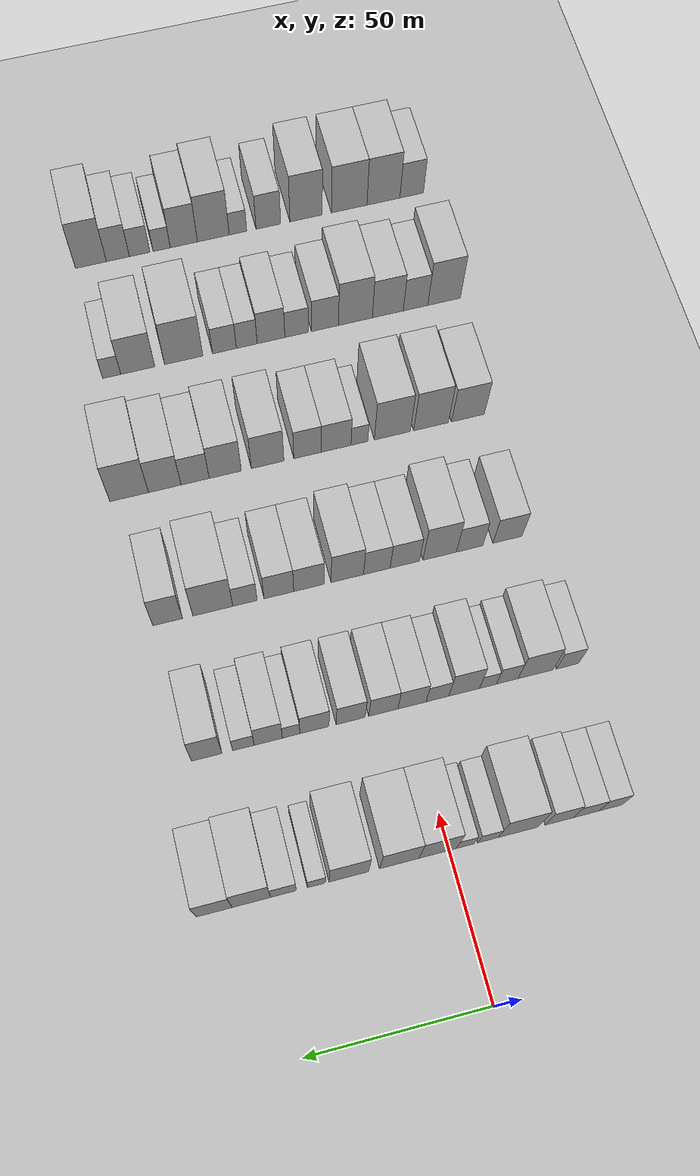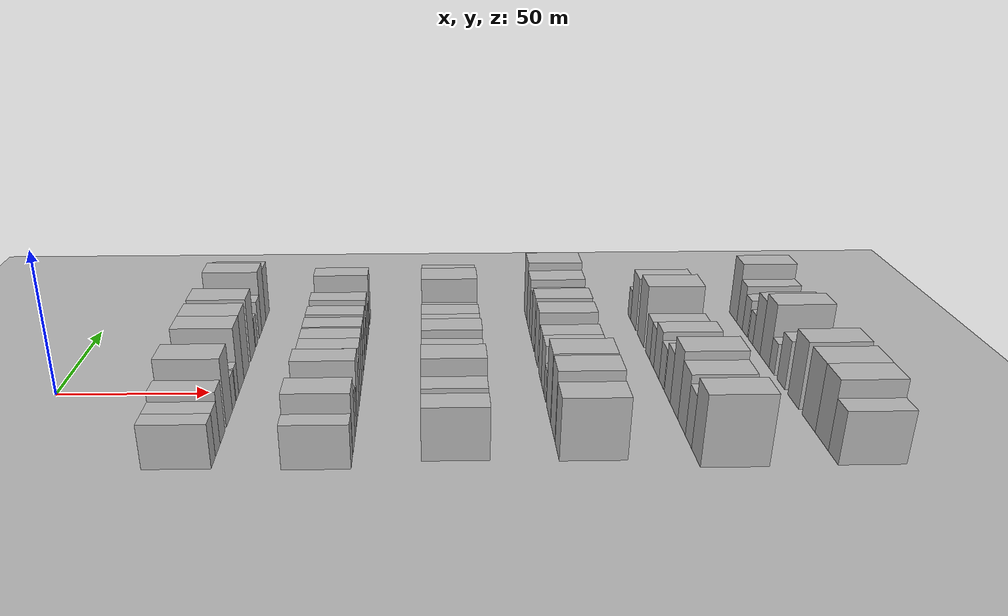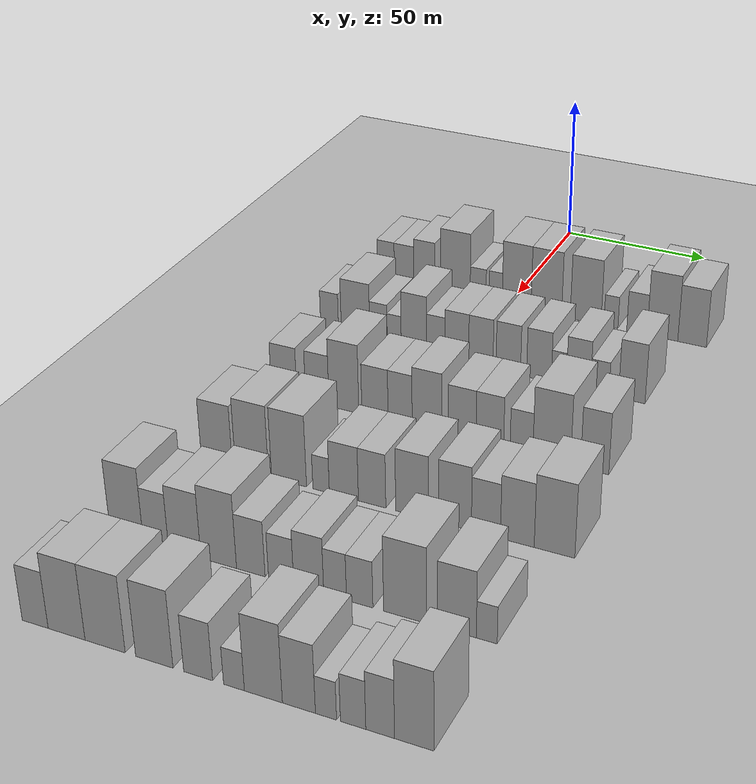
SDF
<sdf version="1.6">
 <world name="default">
  <include><name>ground_plane_1</name><uri>model://HANNAS_ground_plane</uri></include>
  <include>
   <name>ground_plane_2</name>
   <uri>model://HANNAS_ground_plane</uri>
   <pose>100 0 0  0 0 0</pose>
  </include>
  <model name="building_63">
   <static>1</static>
   <pose>50.0000 -44.7926 0 0.000000 0.000000 0.000000</pose>
   <link name="link">
    <pose>0 0 7.50 0 0 0</pose>
    <collision name="collision"><geometry><box><size>20.0000 6.4027 15.0000</size></box></geometry></collision>
    <visual name="visual">
     <cast_shadows>0</cast_shadows>
     <geometry><box><size>20.0000 6.4027 15.0000</size></box></geometry>
     <material>
      <script>
       <uri>model://HANNAS_wall/materials/scripts</uri>
       <uri>model://HANNAS_wall/materials/textures</uri>
       <name>vrc/HANNAS_wall</name>
      </script>
     </material>
    </visual>
   </link>
  </model>
  <model name="building_64">
   <static>1</static>
   <pose>50.0000 -37.9547 0 0.000000 0.000000 0.000000</pose>
   <link name="link">
    <pose>0 0 7.50 0 0 0</pose>
    <collision name="collision"><geometry><box><size>20.0000 7.2730 15.0000</size></box></geometry></collision>
    <visual name="visual">
     <cast_shadows>0</cast_shadows>
     <geometry><box><size>20.0000 7.2730 15.0000</size></box></geometry>
     <material>
      <script>
       <uri>model://HANNAS_wall/materials/scripts</uri>
       <uri>model://HANNAS_wall/materials/textures</uri>
       <name>vrc/HANNAS_wall</name>
      </script>
     </material>
    </visual>
   </link>
  </model>
  <model name="building_65">
   <static>1</static>
   <pose>50.0000 -30.3845 0 0.000000 0.000000 0.000000</pose>
   <link name="link">
    <pose>0 0 9.00 0 0 0</pose>
    <collision name="collision"><geometry><box><size>20.0000 7.8674 18.0000</size></box></geometry></collision>
    <visual name="visual">
     <cast_shadows>0</cast_shadows>
     <geometry><box><size>20.0000 7.8674 18.0000</size></box></geometry>
     <material>
      <script>
       <uri>model://HANNAS_wall/materials/scripts</uri>
       <uri>model://HANNAS_wall/materials/textures</uri>
       <name>vrc/HANNAS_wall</name>
      </script>
     </material>
    </visual>
   </link>
  </model>
  <model name="building_66">
   <static>1</static>
   <pose>50.0000 -18.9891 0 0.000000 0.000000 0.000000</pose>
   <link name="link">
    <pose>0 0 12.00 0 0 0</pose>
    <collision name="collision"><geometry><box><size>20.0000 10.9234 24.0000</size></box></geometry></collision>
    <visual name="visual">
     <cast_shadows>0</cast_shadows>
     <geometry><box><size>20.0000 10.9234 24.0000</size></box></geometry>
     <material>
      <script>
       <uri>model://HANNAS_wall/materials/scripts</uri>
       <uri>model://HANNAS_wall/materials/textures</uri>
       <name>vrc/HANNAS_wall</name>
      </script>
     </material>
    </visual>
   </link>
  </model>
  <model name="building_67">
   <static>1</static>
   <pose>50.0000 -10.6484 0 0.000000 0.000000 0.000000</pose>
   <link name="link">
    <pose>0 0 6.00 0 0 0</pose>
    <collision name="collision"><geometry><box><size>20.0000 5.7579 12.0000</size></box></geometry></collision>
    <visual name="visual">
     <cast_shadows>0</cast_shadows>
     <geometry><box><size>20.0000 5.7579 12.0000</size></box></geometry>
     <material>
      <script>
       <uri>model://HANNAS_wall/materials/scripts</uri>
       <uri>model://HANNAS_wall/materials/textures</uri>
       <name>vrc/HANNAS_wall</name>
      </script>
     </material>
    </visual>
   </link>
  </model>
  <model name="building_68">
   <static>1</static>
   <pose>50.0000 -4.3499 0 0.000000 0.000000 0.000000</pose>
   <link name="link">
    <pose>0 0 6.00 0 0 0</pose>
    <collision name="collision"><geometry><box><size>20.0000 4.8391 12.0000</size></box></geometry></collision>
    <visual name="visual">
     <cast_shadows>0</cast_shadows>
     <geometry><box><size>20.0000 4.8391 12.0000</size></box></geometry>
     <material>
      <script>
       <uri>model://HANNAS_wall/materials/scripts</uri>
       <uri>model://HANNAS_wall/materials/textures</uri>
       <name>vrc/HANNAS_wall</name>
      </script>
     </material>
    </visual>
   </link>
  </model>
  <model name="building_69">
   <static>1</static>
   <pose>50.0000 3.2080 0 0.000000 0.000000 0.000000</pose>
   <link name="link">
    <pose>0 0 12.00 0 0 0</pose>
    <collision name="collision"><geometry><box><size>20.0000 10.2767 24.0000</size></box></geometry></collision>
    <visual name="visual">
     <cast_shadows>0</cast_shadows>
     <geometry><box><size>20.0000 10.2767 24.0000</size></box></geometry>
     <material>
      <script>
       <uri>model://HANNAS_wall/materials/scripts</uri>
       <uri>model://HANNAS_wall/materials/textures</uri>
       <name>vrc/HANNAS_wall</name>
      </script>
     </material>
    </visual>
   </link>
  </model>
  <model name="building_70">
   <static>1</static>
   <pose>50.0000 13.7249 0 0.000000 0.000000 0.000000</pose>
   <link name="link">
    <pose>0 0 12.00 0 0 0</pose>
    <collision name="collision"><geometry><box><size>20.0000 10.7570 24.0000</size></box></geometry></collision>
    <visual name="visual">
     <cast_shadows>0</cast_shadows>
     <geometry><box><size>20.0000 10.7570 24.0000</size></box></geometry>
     <material>
      <script>
       <uri>model://HANNAS_wall/materials/scripts</uri>
       <uri>model://HANNAS_wall/materials/textures</uri>
       <name>vrc/HANNAS_wall</name>
      </script>
     </material>
    </visual>
   </link>
  </model>
  <model name="building_71">
   <static>1</static>
   <pose>50.0000 27.4315 0 0.000000 0.000000 0.000000</pose>
   <link name="link">
    <pose>0 0 12.00 0 0 0</pose>
    <collision name="collision"><geometry><box><size>20.0000 10.6563 24.0000</size></box></geometry></collision>
    <visual name="visual">
     <cast_shadows>0</cast_shadows>
     <geometry><box><size>20.0000 10.6563 24.0000</size></box></geometry>
     <material>
      <script>
       <uri>model://HANNAS_wall/materials/scripts</uri>
       <uri>model://HANNAS_wall/materials/textures</uri>
       <name>vrc/HANNAS_wall</name>
      </script>
     </material>
    </visual>
   </link>
  </model>
  <model name="building_72">
   <static>1</static>
   <pose>50.0000 36.1661 0 0.000000 0.000000 0.000000</pose>
   <link name="link">
    <pose>0 0 6.00 0 0 0</pose>
    <collision name="collision"><geometry><box><size>20.0000 4.8128 12.0000</size></box></geometry></collision>
    <visual name="visual">
     <cast_shadows>0</cast_shadows>
     <geometry><box><size>20.0000 4.8128 12.0000</size></box></geometry>
     <material>
      <script>
       <uri>model://HANNAS_wall/materials/scripts</uri>
       <uri>model://HANNAS_wall/materials/textures</uri>
       <name>vrc/HANNAS_wall</name>
      </script>
     </material>
    </visual>
   </link>
  </model>
  <model name="building_73">
   <static>1</static>
   <pose>50.0000 45.0174 0 0.000000 0.000000 0.000000</pose>
   <link name="link">
    <pose>0 0 7.50 0 0 0</pose>
    <collision name="collision"><geometry><box><size>20.0000 6.8899 15.0000</size></box></geometry></collision>
    <visual name="visual">
     <cast_shadows>0</cast_shadows>
     <geometry><box><size>20.0000 6.8899 15.0000</size></box></geometry>
     <material>
      <script>
       <uri>model://HANNAS_wall/materials/scripts</uri>
       <uri>model://HANNAS_wall/materials/textures</uri>
       <name>vrc/HANNAS_wall</name>
      </script>
     </material>
    </visual>
   </link>
  </model>
  <model name="building_74">
   <static>1</static>
   <pose>50.0000 53.5892 0 0.000000 0.000000 0.000000</pose>
   <link name="link">
    <pose>0 0 12.00 0 0 0</pose>
    <collision name="collision"><geometry><box><size>20.0000 10.2537 24.0000</size></box></geometry></collision>
    <visual name="visual">
     <cast_shadows>0</cast_shadows>
     <geometry><box><size>20.0000 10.2537 24.0000</size></box></geometry>
     <material>
      <script>
       <uri>model://HANNAS_wall/materials/scripts</uri>
       <uri>model://HANNAS_wall/materials/textures</uri>
       <name>vrc/HANNAS_wall</name>
      </script>
     </material>
    </visual>
   </link>
  </model>
  <model name="building_75">
   <static>1</static>
   <pose>50.0000 63.4584 0 0.000000 0.000000 0.000000</pose>
   <link name="link">
    <pose>0 0 10.50 0 0 0</pose>
    <collision name="collision"><geometry><box><size>20.0000 9.4847 21.0000</size></box></geometry></collision>
    <visual name="visual">
     <cast_shadows>0</cast_shadows>
     <geometry><box><size>20.0000 9.4847 21.0000</size></box></geometry>
     <material>
      <script>
       <uri>model://HANNAS_wall/materials/scripts</uri>
       <uri>model://HANNAS_wall/materials/textures</uri>
       <name>vrc/HANNAS_wall</name>
      </script>
     </material>
    </visual>
   </link>
  </model>
  <model name="building_201">
   <static>1</static>
   <pose>90.0000 -45.8634 0 0.000000 0.000000 0.000000</pose>
   <link name="link">
    <pose>0 0 7.50 0 0 0</pose>
    <collision name="collision"><geometry><box><size>20.0000 6.4778 15.0000</size></box></geometry></collision>
    <visual name="visual">
     <cast_shadows>0</cast_shadows>
     <geometry><box><size>20.0000 6.4778 15.0000</size></box></geometry>
     <material>
      <script>
       <uri>model://HANNAS_wall/materials/scripts</uri>
       <uri>model://HANNAS_wall/materials/textures</uri>
       <name>vrc/HANNAS_wall</name>
      </script>
     </material>
    </visual>
   </link>
  </model>
  <model name="building_202">
   <static>1</static>
   <pose>90.0000 -36.5340 0 0.000000 0.000000 0.000000</pose>
   <link name="link">
    <pose>0 0 10.50 0 0 0</pose>
    <collision name="collision"><geometry><box><size>20.0000 10.1811 21.0000</size></box></geometry></collision>
    <visual name="visual">
     <cast_shadows>0</cast_shadows>
     <geometry><box><size>20.0000 10.1811 21.0000</size></box></geometry>
     <material>
      <script>
       <uri>model://HANNAS_wall/materials/scripts</uri>
       <uri>model://HANNAS_wall/materials/textures</uri>
       <name>vrc/HANNAS_wall</name>
      </script>
     </material>
    </visual>
   </link>
  </model>
  <model name="building_203">
   <static>1</static>
   <pose>90.0000 -28.3582 0 0.000000 0.000000 0.000000</pose>
   <link name="link">
    <pose>0 0 7.50 0 0 0</pose>
    <collision name="collision"><geometry><box><size>20.0000 6.1705 15.0000</size></box></geometry></collision>
    <visual name="visual">
     <cast_shadows>0</cast_shadows>
     <geometry><box><size>20.0000 6.1705 15.0000</size></box></geometry>
     <material>
      <script>
       <uri>model://HANNAS_wall/materials/scripts</uri>
       <uri>model://HANNAS_wall/materials/textures</uri>
       <name>vrc/HANNAS_wall</name>
      </script>
     </material>
    </visual>
   </link>
  </model>
  <model name="building_204">
   <static>1</static>
   <pose>90.0000 -22.8084 0 0.000000 0.000000 0.000000</pose>
   <link name="link">
    <pose>0 0 6.00 0 0 0</pose>
    <collision name="collision"><geometry><box><size>20.0000 4.9291 12.0000</size></box></geometry></collision>
    <visual name="visual">
     <cast_shadows>0</cast_shadows>
     <geometry><box><size>20.0000 4.9291 12.0000</size></box></geometry>
     <material>
      <script>
       <uri>model://HANNAS_wall/materials/scripts</uri>
       <uri>model://HANNAS_wall/materials/textures</uri>
       <name>vrc/HANNAS_wall</name>
      </script>
     </material>
    </visual>
   </link>
  </model>
  <model name="building_205">
   <static>1</static>
   <pose>90.0000 -15.9496 0 0.000000 0.000000 0.000000</pose>
   <link name="link">
    <pose>0 0 10.50 0 0 0</pose>
    <collision name="collision"><geometry><box><size>20.0000 8.7884 21.0000</size></box></geometry></collision>
    <visual name="visual">
     <cast_shadows>0</cast_shadows>
     <geometry><box><size>20.0000 8.7884 21.0000</size></box></geometry>
     <material>
      <script>
       <uri>model://HANNAS_wall/materials/scripts</uri>
       <uri>model://HANNAS_wall/materials/textures</uri>
       <name>vrc/HANNAS_wall</name>
      </script>
     </material>
    </visual>
   </link>
  </model>
  <model name="building_206">
   <static>1</static>
   <pose>90.0000 -8.3296 0 0.000000 0.000000 0.000000</pose>
   <link name="link">
    <pose>0 0 7.50 0 0 0</pose>
    <collision name="collision"><geometry><box><size>20.0000 6.4515 15.0000</size></box></geometry></collision>
    <visual name="visual">
     <cast_shadows>0</cast_shadows>
     <geometry><box><size>20.0000 6.4515 15.0000</size></box></geometry>
     <material>
      <script>
       <uri>model://HANNAS_wall/materials/scripts</uri>
       <uri>model://HANNAS_wall/materials/textures</uri>
       <name>vrc/HANNAS_wall</name>
      </script>
     </material>
    </visual>
   </link>
  </model>
  <model name="building_207">
   <static>1</static>
   <pose>90.0000 -1.0708 0 0.000000 0.000000 0.000000</pose>
   <link name="link">
    <pose>0 0 9.00 0 0 0</pose>
    <collision name="collision"><geometry><box><size>20.0000 8.0662 18.0000</size></box></geometry></collision>
    <visual name="visual">
     <cast_shadows>0</cast_shadows>
     <geometry><box><size>20.0000 8.0662 18.0000</size></box></geometry>
     <material>
      <script>
       <uri>model://HANNAS_wall/materials/scripts</uri>
       <uri>model://HANNAS_wall/materials/textures</uri>
       <name>vrc/HANNAS_wall</name>
      </script>
     </material>
    </visual>
   </link>
  </model>
  <model name="building_208">
   <static>1</static>
   <pose>90.0000 7.0812 0 0.000000 0.000000 0.000000</pose>
   <link name="link">
    <pose>0 0 9.00 0 0 0</pose>
    <collision name="collision"><geometry><box><size>20.0000 8.2378 18.0000</size></box></geometry></collision>
    <visual name="visual">
     <cast_shadows>0</cast_shadows>
     <geometry><box><size>20.0000 8.2378 18.0000</size></box></geometry>
     <material>
      <script>
       <uri>model://HANNAS_wall/materials/scripts</uri>
       <uri>model://HANNAS_wall/materials/textures</uri>
       <name>vrc/HANNAS_wall</name>
      </script>
     </material>
    </visual>
   </link>
  </model>
  <model name="building_209">
   <static>1</static>
   <pose>90.0000 16.2996 0 0.000000 0.000000 0.000000</pose>
   <link name="link">
    <pose>0 0 9.00 0 0 0</pose>
    <collision name="collision"><geometry><box><size>20.0000 8.1992 18.0000</size></box></geometry></collision>
    <visual name="visual">
     <cast_shadows>0</cast_shadows>
     <geometry><box><size>20.0000 8.1992 18.0000</size></box></geometry>
     <material>
      <script>
       <uri>model://HANNAS_wall/materials/scripts</uri>
       <uri>model://HANNAS_wall/materials/textures</uri>
       <name>vrc/HANNAS_wall</name>
      </script>
     </material>
    </visual>
   </link>
  </model>
  <model name="building_210">
   <static>1</static>
   <pose>90.0000 26.4878 0 0.000000 0.000000 0.000000</pose>
   <link name="link">
    <pose>0 0 9.00 0 0 0</pose>
    <collision name="collision"><geometry><box><size>20.0000 8.1772 18.0000</size></box></geometry></collision>
    <visual name="visual">
     <cast_shadows>0</cast_shadows>
     <geometry><box><size>20.0000 8.1772 18.0000</size></box></geometry>
     <material>
      <script>
       <uri>model://HANNAS_wall/materials/scripts</uri>
       <uri>model://HANNAS_wall/materials/textures</uri>
       <name>vrc/HANNAS_wall</name>
      </script>
     </material>
    </visual>
   </link>
  </model>
  <model name="building_211">
   <static>1</static>
   <pose>90.0000 33.0249 0 0.000000 0.000000 0.000000</pose>
   <link name="link">
    <pose>0 0 6.00 0 0 0</pose>
    <collision name="collision"><geometry><box><size>20.0000 4.8970 12.0000</size></box></geometry></collision>
    <visual name="visual">
     <cast_shadows>0</cast_shadows>
     <geometry><box><size>20.0000 4.8970 12.0000</size></box></geometry>
     <material>
      <script>
       <uri>model://HANNAS_wall/materials/scripts</uri>
       <uri>model://HANNAS_wall/materials/textures</uri>
       <name>vrc/HANNAS_wall</name>
      </script>
     </material>
    </visual>
   </link>
  </model>
  <model name="building_212">
   <static>1</static>
   <pose>90.0000 39.3878 0 0.000000 0.000000 0.000000</pose>
   <link name="link">
    <pose>0 0 9.00 0 0 0</pose>
    <collision name="collision"><geometry><box><size>20.0000 7.8288 18.0000</size></box></geometry></collision>
    <visual name="visual">
     <cast_shadows>0</cast_shadows>
     <geometry><box><size>20.0000 7.8288 18.0000</size></box></geometry>
     <material>
      <script>
       <uri>model://HANNAS_wall/materials/scripts</uri>
       <uri>model://HANNAS_wall/materials/textures</uri>
       <name>vrc/HANNAS_wall</name>
      </script>
     </material>
    </visual>
   </link>
  </model>
  <model name="building_213">
   <static>1</static>
   <pose>90.0000 46.2913 0 0.000000 0.000000 0.000000</pose>
   <link name="link">
    <pose>0 0 6.00 0 0 0</pose>
    <collision name="collision"><geometry><box><size>20.0000 5.9782 12.0000</size></box></geometry></collision>
    <visual name="visual">
     <cast_shadows>0</cast_shadows>
     <geometry><box><size>20.0000 5.9782 12.0000</size></box></geometry>
     <material>
      <script>
       <uri>model://HANNAS_wall/materials/scripts</uri>
       <uri>model://HANNAS_wall/materials/textures</uri>
       <name>vrc/HANNAS_wall</name>
      </script>
     </material>
    </visual>
   </link>
  </model>
  <model name="building_214">
   <static>1</static>
   <pose>90.0000 56.4961 0 0.000000 0.000000 0.000000</pose>
   <link name="link">
    <pose>0 0 10.50 0 0 0</pose>
    <collision name="collision"><geometry><box><size>20.0000 8.4315 21.0000</size></box></geometry></collision>
    <visual name="visual">
     <cast_shadows>0</cast_shadows>
     <geometry><box><size>20.0000 8.4315 21.0000</size></box></geometry>
     <material>
      <script>
       <uri>model://HANNAS_wall/materials/scripts</uri>
       <uri>model://HANNAS_wall/materials/textures</uri>
       <name>vrc/HANNAS_wall</name>
      </script>
     </material>
    </visual>
   </link>
  </model>
  <model name="building_340">
   <static>1</static>
   <pose>130.0000 -40.8771 0 0.000000 0.000000 0.000000</pose>
   <link name="link">
    <pose>0 0 9.00 0 0 0</pose>
    <collision name="collision"><geometry><box><size>20.0000 8.7366 18.0000</size></box></geometry></collision>
    <visual name="visual">
     <cast_shadows>0</cast_shadows>
     <geometry><box><size>20.0000 8.7366 18.0000</size></box></geometry>
     <material>
      <script>
       <uri>model://HANNAS_wall/materials/scripts</uri>
       <uri>model://HANNAS_wall/materials/textures</uri>
       <name>vrc/HANNAS_wall</name>
      </script>
     </material>
    </visual>
   </link>
  </model>
  <model name="building_341">
   <static>1</static>
   <pose>130.0000 -29.5547 0 0.000000 0.000000 0.000000</pose>
   <link name="link">
    <pose>0 0 9.00 0 0 0</pose>
    <collision name="collision"><geometry><box><size>20.0000 7.9082 18.0000</size></box></geometry></collision>
    <visual name="visual">
     <cast_shadows>0</cast_shadows>
     <geometry><box><size>20.0000 7.9082 18.0000</size></box></geometry>
     <material>
      <script>
       <uri>model://HANNAS_wall/materials/scripts</uri>
       <uri>model://HANNAS_wall/materials/textures</uri>
       <name>vrc/HANNAS_wall</name>
      </script>
     </material>
    </visual>
   </link>
  </model>
  <model name="building_342">
   <static>1</static>
   <pose>130.0000 -20.6099 0 0.000000 0.000000 0.000000</pose>
   <link name="link">
    <pose>0 0 12.00 0 0 0</pose>
    <collision name="collision"><geometry><box><size>20.0000 9.9812 24.0000</size></box></geometry></collision>
    <visual name="visual">
     <cast_shadows>0</cast_shadows>
     <geometry><box><size>20.0000 9.9812 24.0000</size></box></geometry>
     <material>
      <script>
       <uri>model://HANNAS_wall/materials/scripts</uri>
       <uri>model://HANNAS_wall/materials/textures</uri>
       <name>vrc/HANNAS_wall</name>
      </script>
     </material>
    </visual>
   </link>
  </model>
  <model name="building_343">
   <static>1</static>
   <pose>130.0000 -10.2890 0 0.000000 0.000000 0.000000</pose>
   <link name="link">
    <pose>0 0 9.00 0 0 0</pose>
    <collision name="collision"><geometry><box><size>20.0000 8.6606 18.0000</size></box></geometry></collision>
    <visual name="visual">
     <cast_shadows>0</cast_shadows>
     <geometry><box><size>20.0000 8.6606 18.0000</size></box></geometry>
     <material>
      <script>
       <uri>model://HANNAS_wall/materials/scripts</uri>
       <uri>model://HANNAS_wall/materials/textures</uri>
       <name>vrc/HANNAS_wall</name>
      </script>
     </material>
    </visual>
   </link>
  </model>
  <model name="building_344">
   <static>1</static>
   <pose>130.0000 -2.0347 0 0.000000 0.000000 0.000000</pose>
   <link name="link">
    <pose>0 0 9.00 0 0 0</pose>
    <collision name="collision"><geometry><box><size>20.0000 7.8482 18.0000</size></box></geometry></collision>
    <visual name="visual">
     <cast_shadows>0</cast_shadows>
     <geometry><box><size>20.0000 7.8482 18.0000</size></box></geometry>
     <material>
      <script>
       <uri>model://HANNAS_wall/materials/scripts</uri>
       <uri>model://HANNAS_wall/materials/textures</uri>
       <name>vrc/HANNAS_wall</name>
      </script>
     </material>
    </visual>
   </link>
  </model>
  <model name="building_345">
   <static>1</static>
   <pose>130.0000 6.6617 0 0.000000 0.000000 0.000000</pose>
   <link name="link">
    <pose>0 0 10.50 0 0 0</pose>
    <collision name="collision"><geometry><box><size>20.0000 9.5446 21.0000</size></box></geometry></collision>
    <visual name="visual">
     <cast_shadows>0</cast_shadows>
     <geometry><box><size>20.0000 9.5446 21.0000</size></box></geometry>
     <material>
      <script>
       <uri>model://HANNAS_wall/materials/scripts</uri>
       <uri>model://HANNAS_wall/materials/textures</uri>
       <name>vrc/HANNAS_wall</name>
      </script>
     </material>
    </visual>
   </link>
  </model>
  <model name="building_346">
   <static>1</static>
   <pose>130.0000 17.8784 0 0.000000 0.000000 0.000000</pose>
   <link name="link">
    <pose>0 0 9.00 0 0 0</pose>
    <collision name="collision"><geometry><box><size>20.0000 8.8888 18.0000</size></box></geometry></collision>
    <visual name="visual">
     <cast_shadows>0</cast_shadows>
     <geometry><box><size>20.0000 8.8888 18.0000</size></box></geometry>
     <material>
      <script>
       <uri>model://HANNAS_wall/materials/scripts</uri>
       <uri>model://HANNAS_wall/materials/textures</uri>
       <name>vrc/HANNAS_wall</name>
      </script>
     </material>
    </visual>
   </link>
  </model>
  <model name="building_347">
   <static>1</static>
   <pose>130.0000 26.6418 0 0.000000 0.000000 0.000000</pose>
   <link name="link">
    <pose>0 0 9.00 0 0 0</pose>
    <collision name="collision"><geometry><box><size>20.0000 8.6379 18.0000</size></box></geometry></collision>
    <visual name="visual">
     <cast_shadows>0</cast_shadows>
     <geometry><box><size>20.0000 8.6379 18.0000</size></box></geometry>
     <material>
      <script>
       <uri>model://HANNAS_wall/materials/scripts</uri>
       <uri>model://HANNAS_wall/materials/textures</uri>
       <name>vrc/HANNAS_wall</name>
      </script>
     </material>
    </visual>
   </link>
  </model>
  <model name="building_348">
   <static>1</static>
   <pose>130.0000 36.4866 0 0.000000 0.000000 0.000000</pose>
   <link name="link">
    <pose>0 0 7.50 0 0 0</pose>
    <collision name="collision"><geometry><box><size>20.0000 7.0516 15.0000</size></box></geometry></collision>
    <visual name="visual">
     <cast_shadows>0</cast_shadows>
     <geometry><box><size>20.0000 7.0516 15.0000</size></box></geometry>
     <material>
      <script>
       <uri>model://HANNAS_wall/materials/scripts</uri>
       <uri>model://HANNAS_wall/materials/textures</uri>
       <name>vrc/HANNAS_wall</name>
      </script>
     </material>
    </visual>
   </link>
  </model>
  <model name="building_349">
   <static>1</static>
   <pose>130.0000 45.7612 0 0.000000 0.000000 0.000000</pose>
   <link name="link">
    <pose>0 0 12.00 0 0 0</pose>
    <collision name="collision"><geometry><box><size>20.0000 11.4976 24.0000</size></box></geometry></collision>
    <visual name="visual">
     <cast_shadows>0</cast_shadows>
     <geometry><box><size>20.0000 11.4976 24.0000</size></box></geometry>
     <material>
      <script>
       <uri>model://HANNAS_wall/materials/scripts</uri>
       <uri>model://HANNAS_wall/materials/textures</uri>
       <name>vrc/HANNAS_wall</name>
      </script>
     </material>
    </visual>
   </link>
  </model>
  <model name="building_350">
   <static>1</static>
   <pose>130.0000 58.7401 0 0.000000 0.000000 0.000000</pose>
   <link name="link">
    <pose>0 0 10.50 0 0 0</pose>
    <collision name="collision"><geometry><box><size>20.0000 8.4601 21.0000</size></box></geometry></collision>
    <visual name="visual">
     <cast_shadows>0</cast_shadows>
     <geometry><box><size>20.0000 8.4601 21.0000</size></box></geometry>
     <material>
      <script>
       <uri>model://HANNAS_wall/materials/scripts</uri>
       <uri>model://HANNAS_wall/materials/textures</uri>
       <name>vrc/HANNAS_wall</name>
      </script>
     </material>
    </visual>
   </link>
  </model>
  <model name="building_473">
   <static>1</static>
   <pose>170.0000 -41.0264 0 0.000000 0.000000 0.000000</pose>
   <link name="link">
    <pose>0 0 10.50 0 0 0</pose>
    <collision name="collision"><geometry><box><size>20.0000 10.1840 21.0000</size></box></geometry></collision>
    <visual name="visual">
     <cast_shadows>0</cast_shadows>
     <geometry><box><size>20.0000 10.1840 21.0000</size></box></geometry>
     <material>
      <script>
       <uri>model://HANNAS_wall/materials/scripts</uri>
       <uri>model://HANNAS_wall/materials/textures</uri>
       <name>vrc/HANNAS_wall</name>
      </script>
     </material>
    </visual>
   </link>
  </model>
  <model name="building_474">
   <static>1</static>
   <pose>170.0000 -29.5927 0 0.000000 0.000000 0.000000</pose>
   <link name="link">
    <pose>0 0 12.00 0 0 0</pose>
    <collision name="collision"><geometry><box><size>20.0000 10.6834 24.0000</size></box></geometry></collision>
    <visual name="visual">
     <cast_shadows>0</cast_shadows>
     <geometry><box><size>20.0000 10.6834 24.0000</size></box></geometry>
     <material>
      <script>
       <uri>model://HANNAS_wall/materials/scripts</uri>
       <uri>model://HANNAS_wall/materials/textures</uri>
       <name>vrc/HANNAS_wall</name>
      </script>
     </material>
    </visual>
   </link>
  </model>
  <model name="building_475">
   <static>1</static>
   <pose>170.0000 -17.7130 0 0.000000 0.000000 0.000000</pose>
   <link name="link">
    <pose>0 0 12.00 0 0 0</pose>
    <collision name="collision"><geometry><box><size>20.0000 11.0760 24.0000</size></box></geometry></collision>
    <visual name="visual">
     <cast_shadows>0</cast_shadows>
     <geometry><box><size>20.0000 11.0760 24.0000</size></box></geometry>
     <material>
      <script>
       <uri>model://HANNAS_wall/materials/scripts</uri>
       <uri>model://HANNAS_wall/materials/textures</uri>
       <name>vrc/HANNAS_wall</name>
      </script>
     </material>
    </visual>
   </link>
  </model>
  <model name="building_476">
   <static>1</static>
   <pose>170.0000 -7.5967 0 0.000000 0.000000 0.000000</pose>
   <link name="link">
    <pose>0 0 6.00 0 0 0</pose>
    <collision name="collision"><geometry><box><size>20.0000 5.1565 12.0000</size></box></geometry></collision>
    <visual name="visual">
     <cast_shadows>0</cast_shadows>
     <geometry><box><size>20.0000 5.1565 12.0000</size></box></geometry>
     <material>
      <script>
       <uri>model://HANNAS_wall/materials/scripts</uri>
       <uri>model://HANNAS_wall/materials/textures</uri>
       <name>vrc/HANNAS_wall</name>
      </script>
     </material>
    </visual>
   </link>
  </model>
  <model name="building_477">
   <static>1</static>
   <pose>170.0000 -0.5232 0 0.000000 0.000000 0.000000</pose>
   <link name="link">
    <pose>0 0 9.00 0 0 0</pose>
    <collision name="collision"><geometry><box><size>20.0000 8.9904 18.0000</size></box></geometry></collision>
    <visual name="visual">
     <cast_shadows>0</cast_shadows>
     <geometry><box><size>20.0000 8.9904 18.0000</size></box></geometry>
     <material>
      <script>
       <uri>model://HANNAS_wall/materials/scripts</uri>
       <uri>model://HANNAS_wall/materials/textures</uri>
       <name>vrc/HANNAS_wall</name>
      </script>
     </material>
    </visual>
   </link>
  </model>
  <model name="building_478">
   <static>1</static>
   <pose>170.0000 8.1607 0 0.000000 0.000000 0.000000</pose>
   <link name="link">
    <pose>0 0 9.00 0 0 0</pose>
    <collision name="collision"><geometry><box><size>20.0000 8.3774 18.0000</size></box></geometry></collision>
    <visual name="visual">
     <cast_shadows>0</cast_shadows>
     <geometry><box><size>20.0000 8.3774 18.0000</size></box></geometry>
     <material>
      <script>
       <uri>model://HANNAS_wall/materials/scripts</uri>
       <uri>model://HANNAS_wall/materials/textures</uri>
       <name>vrc/HANNAS_wall</name>
      </script>
     </material>
    </visual>
   </link>
  </model>
  <model name="building_479">
   <static>1</static>
   <pose>170.0000 20.2621 0 0.000000 0.000000 0.000000</pose>
   <link name="link">
    <pose>0 0 10.50 0 0 0</pose>
    <collision name="collision"><geometry><box><size>20.0000 9.8255 21.0000</size></box></geometry></collision>
    <visual name="visual">
     <cast_shadows>0</cast_shadows>
     <geometry><box><size>20.0000 9.8255 21.0000</size></box></geometry>
     <material>
      <script>
       <uri>model://HANNAS_wall/materials/scripts</uri>
       <uri>model://HANNAS_wall/materials/textures</uri>
       <name>vrc/HANNAS_wall</name>
      </script>
     </material>
    </visual>
   </link>
  </model>
  <model name="building_480">
   <static>1</static>
   <pose>170.0000 32.9960 0 0.000000 0.000000 0.000000</pose>
   <link name="link">
    <pose>0 0 10.50 0 0 0</pose>
    <collision name="collision"><geometry><box><size>20.0000 9.6422 21.0000</size></box></geometry></collision>
    <visual name="visual">
     <cast_shadows>0</cast_shadows>
     <geometry><box><size>20.0000 9.6422 21.0000</size></box></geometry>
     <material>
      <script>
       <uri>model://HANNAS_wall/materials/scripts</uri>
       <uri>model://HANNAS_wall/materials/textures</uri>
       <name>vrc/HANNAS_wall</name>
      </script>
     </material>
    </visual>
   </link>
  </model>
  <model name="building_481">
   <static>1</static>
   <pose>170.0000 42.0280 0 0.000000 0.000000 0.000000</pose>
   <link name="link">
    <pose>0 0 9.00 0 0 0</pose>
    <collision name="collision"><geometry><box><size>20.0000 8.4218 18.0000</size></box></geometry></collision>
    <visual name="visual">
     <cast_shadows>0</cast_shadows>
     <geometry><box><size>20.0000 8.4218 18.0000</size></box></geometry>
     <material>
      <script>
       <uri>model://HANNAS_wall/materials/scripts</uri>
       <uri>model://HANNAS_wall/materials/textures</uri>
       <name>vrc/HANNAS_wall</name>
      </script>
     </material>
    </visual>
   </link>
  </model>
  <model name="building_482">
   <static>1</static>
   <pose>170.0000 51.0727 0 0.000000 0.000000 0.000000</pose>
   <link name="link">
    <pose>0 0 10.50 0 0 0</pose>
    <collision name="collision"><geometry><box><size>20.0000 9.6677 21.0000</size></box></geometry></collision>
    <visual name="visual">
     <cast_shadows>0</cast_shadows>
     <geometry><box><size>20.0000 9.6677 21.0000</size></box></geometry>
     <material>
      <script>
       <uri>model://HANNAS_wall/materials/scripts</uri>
       <uri>model://HANNAS_wall/materials/textures</uri>
       <name>vrc/HANNAS_wall</name>
      </script>
     </material>
    </visual>
   </link>
  </model>
  <model name="building_483">
   <static>1</static>
   <pose>170.0000 61.6264 0 0.000000 0.000000 0.000000</pose>
   <link name="link">
    <pose>0 0 12.00 0 0 0</pose>
    <collision name="collision"><geometry><box><size>20.0000 11.4396 24.0000</size></box></geometry></collision>
    <visual name="visual">
     <cast_shadows>0</cast_shadows>
     <geometry><box><size>20.0000 11.4396 24.0000</size></box></geometry>
     <material>
      <script>
       <uri>model://HANNAS_wall/materials/scripts</uri>
       <uri>model://HANNAS_wall/materials/textures</uri>
       <name>vrc/HANNAS_wall</name>
      </script>
     </material>
    </visual>
   </link>
  </model>
  <model name="building_608">
   <static>1</static>
   <pose>210.0000 -45.3540 0 0.000000 0.000000 0.000000</pose>
   <link name="link">
    <pose>0 0 12.00 0 0 0</pose>
    <collision name="collision"><geometry><box><size>20.0000 10.4178 24.0000</size></box></geometry></collision>
    <visual name="visual">
     <cast_shadows>0</cast_shadows>
     <geometry><box><size>20.0000 10.4178 24.0000</size></box></geometry>
     <material>
      <script>
       <uri>model://HANNAS_wall/materials/scripts</uri>
       <uri>model://HANNAS_wall/materials/textures</uri>
       <name>vrc/HANNAS_wall</name>
      </script>
     </material>
    </visual>
   </link>
  </model>
  <model name="building_609">
   <static>1</static>
   <pose>210.0000 -36.2228 0 0.000000 0.000000 0.000000</pose>
   <link name="link">
    <pose>0 0 9.00 0 0 0</pose>
    <collision name="collision"><geometry><box><size>20.0000 7.8445 18.0000</size></box></geometry></collision>
    <visual name="visual">
     <cast_shadows>0</cast_shadows>
     <geometry><box><size>20.0000 7.8445 18.0000</size></box></geometry>
     <material>
      <script>
       <uri>model://HANNAS_wall/materials/scripts</uri>
       <uri>model://HANNAS_wall/materials/textures</uri>
       <name>vrc/HANNAS_wall</name>
      </script>
     </material>
    </visual>
   </link>
  </model>
  <model name="building_610">
   <static>1</static>
   <pose>210.0000 -27.3534 0 0.000000 0.000000 0.000000</pose>
   <link name="link">
    <pose>0 0 10.50 0 0 0</pose>
    <collision name="collision"><geometry><box><size>20.0000 9.8942 21.0000</size></box></geometry></collision>
    <visual name="visual">
     <cast_shadows>0</cast_shadows>
     <geometry><box><size>20.0000 9.8942 21.0000</size></box></geometry>
     <material>
      <script>
       <uri>model://HANNAS_wall/materials/scripts</uri>
       <uri>model://HANNAS_wall/materials/textures</uri>
       <name>vrc/HANNAS_wall</name>
      </script>
     </material>
    </visual>
   </link>
  </model>
  <model name="building_611">
   <static>1</static>
   <pose>210.0000 -17.0358 0 0.000000 0.000000 0.000000</pose>
   <link name="link">
    <pose>0 0 12.00 0 0 0</pose>
    <collision name="collision"><geometry><box><size>20.0000 10.7409 24.0000</size></box></geometry></collision>
    <visual name="visual">
     <cast_shadows>0</cast_shadows>
     <geometry><box><size>20.0000 10.7409 24.0000</size></box></geometry>
     <material>
      <script>
       <uri>model://HANNAS_wall/materials/scripts</uri>
       <uri>model://HANNAS_wall/materials/textures</uri>
       <name>vrc/HANNAS_wall</name>
      </script>
     </material>
    </visual>
   </link>
  </model>
  <model name="building_612">
   <static>1</static>
   <pose>210.0000 -7.4250 0 0.000000 0.000000 0.000000</pose>
   <link name="link">
    <pose>0 0 9.00 0 0 0</pose>
    <collision name="collision"><geometry><box><size>20.0000 8.4809 18.0000</size></box></geometry></collision>
    <visual name="visual">
     <cast_shadows>0</cast_shadows>
     <geometry><box><size>20.0000 8.4809 18.0000</size></box></geometry>
     <material>
      <script>
       <uri>model://HANNAS_wall/materials/scripts</uri>
       <uri>model://HANNAS_wall/materials/textures</uri>
       <name>vrc/HANNAS_wall</name>
      </script>
     </material>
    </visual>
   </link>
  </model>
  <model name="building_613">
   <static>1</static>
   <pose>210.0000 1.5058 0 0.000000 0.000000 0.000000</pose>
   <link name="link">
    <pose>0 0 7.50 0 0 0</pose>
    <collision name="collision"><geometry><box><size>20.0000 7.3807 15.0000</size></box></geometry></collision>
    <visual name="visual">
     <cast_shadows>0</cast_shadows>
     <geometry><box><size>20.0000 7.3807 15.0000</size></box></geometry>
     <material>
      <script>
       <uri>model://HANNAS_wall/materials/scripts</uri>
       <uri>model://HANNAS_wall/materials/textures</uri>
       <name>vrc/HANNAS_wall</name>
      </script>
     </material>
    </visual>
   </link>
  </model>
  <model name="building_614">
   <static>1</static>
   <pose>210.0000 9.5294 0 0.000000 0.000000 0.000000</pose>
   <link name="link">
    <pose>0 0 9.00 0 0 0</pose>
    <collision name="collision"><geometry><box><size>20.0000 8.6665 18.0000</size></box></geometry></collision>
    <visual name="visual">
     <cast_shadows>0</cast_shadows>
     <geometry><box><size>20.0000 8.6665 18.0000</size></box></geometry>
     <material>
      <script>
       <uri>model://HANNAS_wall/materials/scripts</uri>
       <uri>model://HANNAS_wall/materials/textures</uri>
       <name>vrc/HANNAS_wall</name>
      </script>
     </material>
    </visual>
   </link>
  </model>
  <model name="building_615">
   <static>1</static>
   <pose>210.0000 17.1120 0 0.000000 0.000000 0.000000</pose>
   <link name="link">
    <pose>0 0 7.50 0 0 0</pose>
    <collision name="collision"><geometry><box><size>20.0000 6.4985 15.0000</size></box></geometry></collision>
    <visual name="visual">
     <cast_shadows>0</cast_shadows>
     <geometry><box><size>20.0000 6.4985 15.0000</size></box></geometry>
     <material>
      <script>
       <uri>model://HANNAS_wall/materials/scripts</uri>
       <uri>model://HANNAS_wall/materials/textures</uri>
       <name>vrc/HANNAS_wall</name>
      </script>
     </material>
    </visual>
   </link>
  </model>
  <model name="building_616">
   <static>1</static>
   <pose>210.0000 24.0817 0 0.000000 0.000000 0.000000</pose>
   <link name="link">
    <pose>0 0 7.50 0 0 0</pose>
    <collision name="collision"><geometry><box><size>20.0000 7.4408 15.0000</size></box></geometry></collision>
    <visual name="visual">
     <cast_shadows>0</cast_shadows>
     <geometry><box><size>20.0000 7.4408 15.0000</size></box></geometry>
     <material>
      <script>
       <uri>model://HANNAS_wall/materials/scripts</uri>
       <uri>model://HANNAS_wall/materials/textures</uri>
       <name>vrc/HANNAS_wall</name>
      </script>
     </material>
    </visual>
   </link>
  </model>
  <model name="building_617">
   <static>1</static>
   <pose>210.0000 36.7249 0 0.000000 0.000000 0.000000</pose>
   <link name="link">
    <pose>0 0 12.00 0 0 0</pose>
    <collision name="collision"><geometry><box><size>20.0000 11.8456 24.0000</size></box></geometry></collision>
    <visual name="visual">
     <cast_shadows>0</cast_shadows>
     <geometry><box><size>20.0000 11.8456 24.0000</size></box></geometry>
     <material>
      <script>
       <uri>model://HANNAS_wall/materials/scripts</uri>
       <uri>model://HANNAS_wall/materials/textures</uri>
       <name>vrc/HANNAS_wall</name>
      </script>
     </material>
    </visual>
   </link>
  </model>
  <model name="building_618">
   <static>1</static>
   <pose>210.0000 50.8816 0 0.000000 0.000000 0.000000</pose>
   <link name="link">
    <pose>0 0 10.50 0 0 0</pose>
    <collision name="collision"><geometry><box><size>20.0000 10.4678 21.0000</size></box></geometry></collision>
    <visual name="visual">
     <cast_shadows>0</cast_shadows>
     <geometry><box><size>20.0000 10.4678 21.0000</size></box></geometry>
     <material>
      <script>
       <uri>model://HANNAS_wall/materials/scripts</uri>
       <uri>model://HANNAS_wall/materials/textures</uri>
       <name>vrc/HANNAS_wall</name>
      </script>
     </material>
    </visual>
   </link>
  </model>
  <model name="building_619">
   <static>1</static>
   <pose>210.0000 58.8913 0 0.000000 0.000000 0.000000</pose>
   <link name="link">
    <pose>0 0 6.00 0 0 0</pose>
    <collision name="collision"><geometry><box><size>20.0000 5.5516 12.0000</size></box></geometry></collision>
    <visual name="visual">
     <cast_shadows>0</cast_shadows>
     <geometry><box><size>20.0000 5.5516 12.0000</size></box></geometry>
     <material>
      <script>
       <uri>model://HANNAS_wall/materials/scripts</uri>
       <uri>model://HANNAS_wall/materials/textures</uri>
       <name>vrc/HANNAS_wall</name>
      </script>
     </material>
    </visual>
   </link>
  </model>
  <model name="building_742">
   <static>1</static>
   <pose>250.0000 -46.2854 0 0.000000 0.000000 0.000000</pose>
   <link name="link">
    <pose>0 0 9.00 0 0 0</pose>
    <collision name="collision"><geometry><box><size>20.0000 7.7705 18.0000</size></box></geometry></collision>
    <visual name="visual">
     <cast_shadows>0</cast_shadows>
     <geometry><box><size>20.0000 7.7705 18.0000</size></box></geometry>
     <material>
      <script>
       <uri>model://HANNAS_wall/materials/scripts</uri>
       <uri>model://HANNAS_wall/materials/textures</uri>
       <name>vrc/HANNAS_wall</name>
      </script>
     </material>
    </visual>
   </link>
  </model>
  <model name="building_743">
   <static>1</static>
   <pose>250.0000 -36.9553 0 0.000000 0.000000 0.000000</pose>
   <link name="link">
    <pose>0 0 12.00 0 0 0</pose>
    <collision name="collision"><geometry><box><size>20.0000 10.8898 24.0000</size></box></geometry></collision>
    <visual name="visual">
     <cast_shadows>0</cast_shadows>
     <geometry><box><size>20.0000 10.8898 24.0000</size></box></geometry>
     <material>
      <script>
       <uri>model://HANNAS_wall/materials/scripts</uri>
       <uri>model://HANNAS_wall/materials/textures</uri>
       <name>vrc/HANNAS_wall</name>
      </script>
     </material>
    </visual>
   </link>
  </model>
  <model name="building_744">
   <static>1</static>
   <pose>250.0000 -25.6883 0 0.000000 0.000000 0.000000</pose>
   <link name="link">
    <pose>0 0 12.00 0 0 0</pose>
    <collision name="collision"><geometry><box><size>20.0000 11.6443 24.0000</size></box></geometry></collision>
    <visual name="visual">
     <cast_shadows>0</cast_shadows>
     <geometry><box><size>20.0000 11.6443 24.0000</size></box></geometry>
     <material>
      <script>
       <uri>model://HANNAS_wall/materials/scripts</uri>
       <uri>model://HANNAS_wall/materials/textures</uri>
       <name>vrc/HANNAS_wall</name>
      </script>
     </material>
    </visual>
   </link>
  </model>
  <model name="building_745">
   <static>1</static>
   <pose>250.0000 -11.5832 0 0.000000 0.000000 0.000000</pose>
   <link name="link">
    <pose>0 0 12.00 0 0 0</pose>
    <collision name="collision"><geometry><box><size>20.0000 10.5659 24.0000</size></box></geometry></collision>
    <visual name="visual">
     <cast_shadows>0</cast_shadows>
     <geometry><box><size>20.0000 10.5659 24.0000</size></box></geometry>
     <material>
      <script>
       <uri>model://HANNAS_wall/materials/scripts</uri>
       <uri>model://HANNAS_wall/materials/textures</uri>
       <name>vrc/HANNAS_wall</name>
      </script>
     </material>
    </visual>
   </link>
  </model>
  <model name="building_746">
   <static>1</static>
   <pose>250.0000 0.7070 0 0.000000 0.000000 0.000000</pose>
   <link name="link">
    <pose>0 0 9.00 0 0 0</pose>
    <collision name="collision"><geometry><box><size>20.0000 8.0146 18.0000</size></box></geometry></collision>
    <visual name="visual">
     <cast_shadows>0</cast_shadows>
     <geometry><box><size>20.0000 8.0146 18.0000</size></box></geometry>
     <material>
      <script>
       <uri>model://HANNAS_wall/materials/scripts</uri>
       <uri>model://HANNAS_wall/materials/textures</uri>
       <name>vrc/HANNAS_wall</name>
      </script>
     </material>
    </visual>
   </link>
  </model>
  <model name="building_747">
   <static>1</static>
   <pose>250.0000 10.5476 0 0.000000 0.000000 0.000000</pose>
   <link name="link">
    <pose>0 0 6.00 0 0 0</pose>
    <collision name="collision"><geometry><box><size>20.0000 5.6666 12.0000</size></box></geometry></collision>
    <visual name="visual">
     <cast_shadows>0</cast_shadows>
     <geometry><box><size>20.0000 5.6666 12.0000</size></box></geometry>
     <material>
      <script>
       <uri>model://HANNAS_wall/materials/scripts</uri>
       <uri>model://HANNAS_wall/materials/textures</uri>
       <name>vrc/HANNAS_wall</name>
      </script>
     </material>
    </visual>
   </link>
  </model>
  <model name="building_748">
   <static>1</static>
   <pose>250.0000 18.4886 0 0.000000 0.000000 0.000000</pose>
   <link name="link">
    <pose>0 0 12.00 0 0 0</pose>
    <collision name="collision"><geometry><box><size>20.0000 10.2155 24.0000</size></box></geometry></collision>
    <visual name="visual">
     <cast_shadows>0</cast_shadows>
     <geometry><box><size>20.0000 10.2155 24.0000</size></box></geometry>
     <material>
      <script>
       <uri>model://HANNAS_wall/materials/scripts</uri>
       <uri>model://HANNAS_wall/materials/textures</uri>
       <name>vrc/HANNAS_wall</name>
      </script>
     </material>
    </visual>
   </link>
  </model>
  <model name="building_749">
   <static>1</static>
   <pose>250.0000 27.9572 0 0.000000 0.000000 0.000000</pose>
   <link name="link">
    <pose>0 0 10.50 0 0 0</pose>
    <collision name="collision"><geometry><box><size>20.0000 8.7217 21.0000</size></box></geometry></collision>
    <visual name="visual">
     <cast_shadows>0</cast_shadows>
     <geometry><box><size>20.0000 8.7217 21.0000</size></box></geometry>
     <material>
      <script>
       <uri>model://HANNAS_wall/materials/scripts</uri>
       <uri>model://HANNAS_wall/materials/textures</uri>
       <name>vrc/HANNAS_wall</name>
      </script>
     </material>
    </visual>
   </link>
  </model>
  <model name="building_750">
   <static>1</static>
   <pose>250.0000 35.0748 0 0.000000 0.000000 0.000000</pose>
   <link name="link">
    <pose>0 0 6.00 0 0 0</pose>
    <collision name="collision"><geometry><box><size>20.0000 5.5134 12.0000</size></box></geometry></collision>
    <visual name="visual">
     <cast_shadows>0</cast_shadows>
     <geometry><box><size>20.0000 5.5134 12.0000</size></box></geometry>
     <material>
      <script>
       <uri>model://HANNAS_wall/materials/scripts</uri>
       <uri>model://HANNAS_wall/materials/textures</uri>
       <name>vrc/HANNAS_wall</name>
      </script>
     </material>
    </visual>
   </link>
  </model>
  <model name="building_751">
   <static>1</static>
   <pose>250.0000 42.1019 0 0.000000 0.000000 0.000000</pose>
   <link name="link">
    <pose>0 0 7.50 0 0 0</pose>
    <collision name="collision"><geometry><box><size>20.0000 6.5409 15.0000</size></box></geometry></collision>
    <visual name="visual">
     <cast_shadows>0</cast_shadows>
     <geometry><box><size>20.0000 6.5409 15.0000</size></box></geometry>
     <material>
      <script>
       <uri>model://HANNAS_wall/materials/scripts</uri>
       <uri>model://HANNAS_wall/materials/textures</uri>
       <name>vrc/HANNAS_wall</name>
      </script>
     </material>
    </visual>
   </link>
  </model>
  <model name="building_752">
   <static>1</static>
   <pose>250.0000 49.0250 0 0.000000 0.000000 0.000000</pose>
   <link name="link">
    <pose>0 0 9.00 0 0 0</pose>
    <collision name="collision"><geometry><box><size>20.0000 7.3052 18.0000</size></box></geometry></collision>
    <visual name="visual">
     <cast_shadows>0</cast_shadows>
     <geometry><box><size>20.0000 7.3052 18.0000</size></box></geometry>
     <material>
      <script>
       <uri>model://HANNAS_wall/materials/scripts</uri>
       <uri>model://HANNAS_wall/materials/textures</uri>
       <name>vrc/HANNAS_wall</name>
      </script>
     </material>
    </visual>
   </link>
  </model>
  <model name="building_753">
   <static>1</static>
   <pose>250.0000 57.5965 0 0.000000 0.000000 0.000000</pose>
   <link name="link">
    <pose>0 0 12.00 0 0 0</pose>
    <collision name="collision"><geometry><box><size>20.0000 9.8378 24.0000</size></box></geometry></collision>
    <visual name="visual">
     <cast_shadows>0</cast_shadows>
     <geometry><box><size>20.0000 9.8378 24.0000</size></box></geometry>
     <material>
      <script>
       <uri>model://HANNAS_wall/materials/scripts</uri>
       <uri>model://HANNAS_wall/materials/textures</uri>
       <name>vrc/HANNAS_wall</name>
      </script>
     </material>
    </visual>
   </link>
  </model>
 </world>
</sdf>
